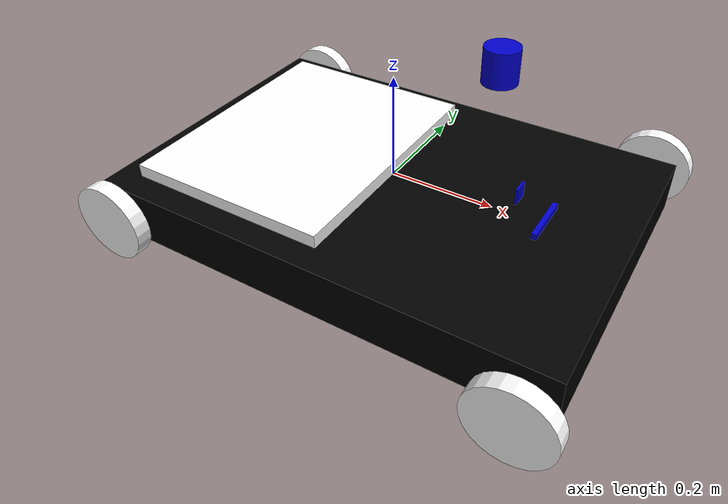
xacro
<?xml version="1.0" encoding="utf-8"?>

<robot name="racebot" xmlns:xacro="http://www.ros.org/wiki/xacro">

    <xacro:include filename="$(find racebot_description)/urdf/ackermann/macros.xacro" />
    <material name="blue">
        <color rgba="0 0 0.8 1" />
    </material>
    <material name="black">
        <color rgba="0 0 0 1" />
    </material>
    <material name="white">
        <color rgba="1 1 1 1" />
    </material>
    <material name="red">
        <color rgba="0.8 0.0 0.0 1.0" />
    </material>
    <material name="grey">
        <color rgba="0 0 0 0.5" />
    </material>

    <link name="base_footprint">
    </link>

    <link name="base_link">
        <visual>
            <geometry>
                <box size="0.9 0.6 0.1" />
            </geometry>
            <origin xyz="0 0 0" rpy="0 0 0" />
            <material name="black" />
        </visual>
        <collision>
            <geometry>
                <box size="0.9 0.6 0.1" />
            </geometry>
            <origin xyz="0.0 0.0 0.0" rpy="0.0 0.0 0.0" />
        </collision>

    </link>

    <joint name="base_link2base_footprint" type="fixed">
        <parent link="base_footprint" />
        <child link="base_link" />
        <origin xyz="0 0 -0.05" rpy="0 0 0" />
    </joint>

    <link name="base_inertia">
        <inertial>
            <origin xyz="0 0 0" />
            <mass value="4" />
            <inertia ixx="0.0264" ixy="0" ixz="0" iyy="0.0294" iyz="0" izz="0.00364" />
        </inertial>
    </link>

    <joint name="chassis_inertia_joint" type="fixed">
        <origin xyz="0 0 0" rpy="0 0 0" />
        <parent link="base_link" />
        <child link="base_inertia" />
    </joint>

    <link name="left_steering_hinge">
        <visual>
            <geometry>
                <cylinder radius="0.01" length="0.005" />
            </geometry>
            <origin xyz="0 0 0" rpy="1.57 0 0" />
            <material name="black">
                <color rgba="0.0 0.0 0.0 1.0" />
            </material>
        </visual>
        <collision>
            <geometry>
                <cylinder radius="0.01" length="0.005" />
            </geometry>
            <origin xyz="0.0 0.0 0.0" rpy="1.57 0.0 0.0" />
        </collision>
        <inertial>
            <origin xyz="0 0 0" />
            <mass value="0.5" />
            <inertia ixx="1.35E-05" ixy="0" ixz="0" iyy="1.35E-05" iyz="0" izz="2.5E-05" />
        </inertial>
    </link>

    <joint name="left_steering_hinge_joint" type="revolute">
        <parent link="base_link" />
        <child link="left_steering_hinge" />
        <origin xyz="0.40 0.33 0" />
        <axis xyz="0 0 1" />
        <limit lower="-0.8" upper="0.8" effort="5.0" velocity="1000.0" />
    </joint>
    <xacro:steering_hinge_transmission name="left_steering_hinge" />

    <link name="left_front_wheel">
        <visual>
            <geometry>
                <cylinder radius="0.075" length="0.03" />
            </geometry>
            <origin xyz="0 0 0" rpy="1.57 0 0" />
            <material name="white" />
        </visual>
        <collision>
            <geometry>
                <cylinder radius="0.075" length="0.03" />
            </geometry>
            <origin xyz="0.0 0.0 0.0" rpy="1.57 0.0 0.0" />
        </collision>
        <inertial>
            <origin xyz="0 0 0" />
            <mass value="2.0" />
            <inertia ixx="6.64E-04" ixy="0" ixz="0" iyy="6.64E-04" iyz="0" izz="1.02E-03" />
        </inertial>
    </link>

    <joint name="left_front_wheel_joint" type="continuous">
        <parent link="left_steering_hinge" />
        <child link="left_front_wheel" />
        <origin xyz="0 0.025 0" />
        <axis xyz="0 1 0" />
        <limit effort="10" velocity="1000" />
    </joint>
    <xacro:wheel_transmission name="left_front_wheel" />

    <link name="right_steering_hinge">
        <visual>
            <geometry>
                <cylinder radius="0.01" length="0.005" />
            </geometry>
            <origin xyz="0 0 0" rpy="1.57 0 0" />
            <material name="black" />
        </visual>
        <collision>
            <geometry>
                <cylinder radius="0.01" length="0.005" />
            </geometry>
            <origin xyz="0.0 0.0 0.0" rpy="1.57 0.0 0.0" />
        </collision>
        <inertial>
            <origin xyz="0 0 0" />
            <mass value="0.5" />
            <inertia ixx="1.35E-05" ixy="0" ixz="0" iyy="1.35E-05" iyz="0" izz="2.5E-05" />
        </inertial>
    </link>

    <joint name="right_steering_hinge_joint" type="revolute">
        <parent link="base_link" />
        <child link="right_steering_hinge" />
        <origin xyz="0.40 -0.33 0" />
        <axis xyz="0 0 1" />
        <limit lower="-0.8" upper="0.8" effort="5.0" velocity="1000.0" />
    </joint>
    <xacro:steering_hinge_transmission name="right_steering_hinge" />

    <link name="right_front_wheel">
        <visual>
            <geometry>
                <cylinder radius="0.075" length="0.03" />
            </geometry>
            <origin xyz="0 0 0" rpy="1.57 0 0" />
            <material name="white" />
        </visual>
        <collision>
            <geometry>
                <cylinder radius="0.075" length="0.03" />
            </geometry>
            <origin xyz="0.0 0.0 0.0" rpy="1.57 0.0 0.0" />
        </collision>
        <inertial>
            <origin xyz="0 0 0" />
            <mass value="2.0" />
            <inertia ixx="6.64E-04" ixy="0" ixz="0" iyy="6.64E-04" iyz="0" izz="1.02E-03" />
        </inertial>
    </link>

    <joint name="right_front_wheel_joint" type="continuous">
        <parent link="right_steering_hinge" />
        <child link="right_front_wheel" />
        <origin xyz="0 -0.025 0" />
        <axis xyz="0 1 0" />
        <limit effort="10" velocity="1000" />
    </joint>
    <xacro:wheel_transmission name="right_front_wheel" />

    <link name="left_rear_wheel">
        <visual>
            <geometry>
                <cylinder radius="0.075" length="0.03" />
            </geometry>
            <origin xyz="0 0 0" rpy="1.57 0 0" />
            <material name="white" />
        </visual>
        <collision>
            <geometry>
                <cylinder radius="0.075" length="0.03" />
            </geometry>
            <origin xyz="0.0 0.0 0.0" rpy="1.57 0.0 0.0" />
        </collision>
        <inertial>
            <origin xyz="0 0 0" />
            <mass value="2.0" />
            <inertia ixx="6.64E-04" ixy="0" ixz="0" iyy="6.64E-04" iyz="0" izz="1.02E-03" />
        </inertial>
    </link>

    <joint name="left_rear_wheel_joint" type="continuous">
        <parent link="base_link" />
        <child link="left_rear_wheel" />
        <origin xyz="-0.40 0.33 0" />
        <axis xyz="0 1 0" />
        <limit effort="10" velocity="1000" />
    </joint>
    <xacro:wheel_transmission name="left_rear_wheel" />

    <link name="right_rear_wheel">
        <visual>
            <geometry>
                <cylinder radius="0.075" length="0.03" />
            </geometry>
            <origin xyz="0 0 0" rpy="1.57 0 0" />
            <material name="white" />
        </visual>
        <collision>
            <geometry>
                <cylinder radius="0.075" length="0.03" />
            </geometry>
            <origin xyz="0.0 0.0 0.0" rpy="1.57 0.0 0.0" />
        </collision>
        <inertial>
            <origin xyz="0 0 0" />
            <mass value="2.0" />
            <inertia ixx="6.64E-04" ixy="0" ixz="0" iyy="6.64E-04" iyz="0" izz="1.02E-03" />
        </inertial>
    </link>

    <joint name="right_rear_wheel_joint" type="continuous">
        <parent link="base_link" />
        <child link="right_rear_wheel" />
        <origin xyz="-0.40 -0.33 0" />
        <axis xyz="0 1 0" />
        <limit effort="10" velocity="1000" />
    </joint>
    <xacro:wheel_transmission name="right_rear_wheel" />

    <link name="camera">
        <visual>
            <geometry>
                <box size="0.005 0.03 0.03" />
            </geometry>
            <origin xyz="0 0 0" rpy="0 0 0" />
            <material name="blue" />
        </visual>
        <collision>
            <geometry>
                <box size="0.005 0.03 0.03" />
            </geometry>
            <origin xyz="0.0 0.0 0.0" rpy="0.0 0.0 0.0" />
        </collision>
        <inertial>
            <origin xyz="0 0 0" />
            <mass value="0.05" />
            <inertia ixx="6.64E-04" ixy="0" ixz="0" iyy="6.64E-04" iyz="0" izz="1.02E-03" />
        </inertial>
    </link>

    <joint name="camera_joint" type="fixed">
        <parent link="base_link" />
        <child link="camera" />
        <origin xyz="0.24851 0.0022137 0.0975" />
        <axis xyz="0 0 1" />
    </joint>

    <link name="real_sense">
        <visual>
            <geometry>
                <box size="0.01 0.1 0.02" />
            </geometry>
            <origin xyz="0 0 0" rpy="0 0 0" />
            <material name="blue" />
        </visual>
        <collision>
            <geometry>
                <box size="0.01 0.1 0.02" />
            </geometry>
            <origin xyz="0.0 0.0 0.0" rpy="0.0 0.0 0.0" />
        </collision>
        <inertial>
            <origin xyz="0 0 0" />
            <mass value="0.05" />
            <inertia ixx="6.64E-04" ixy="0" ixz="0" iyy="6.64E-04" iyz="0" izz="1.02E-03" />
        </inertial>
    </link>

    <joint name="realsense_joint" type="fixed">
        <parent link="base_link" />
        <child link="real_sense" />
        <origin xyz="0.29864 0.0038046 0.052021" />
        <axis xyz="0 0 1" />
    </joint>

    <link name="realsense_depth" />
    <joint name="realsense_depth_joint" type="fixed">
        <origin xyz="0 0 0" rpy="-1.5708 0 -1.5708" />
        <parent link="real_sense" />
        <child link="realsense_depth" />
    </joint>

    <link name="lidar">
        <visual>
            <geometry>
                <cylinder radius="0.03" length="0.06" />
            </geometry>
            <origin xyz="0 0 0" rpy="0 0 0" />
            <material name="blue" />
        </visual>
        <collision>
            <geometry>
                <cylinder radius="0.03" length="0.06" />
            </geometry>
            <origin xyz="0.0 0.0 0.0" rpy="0.0 0.0 0.0" />
        </collision>
        <inertial>
            <origin xyz="0 0 0" />
            <mass value="0.1" />
            <inertia ixx="6.64E-04" ixy="0" ixz="0" iyy="6.64E-04" iyz="0" izz="1.02E-03" />
        </inertial>
    </link>

    <joint name="lidar_joint" type="fixed">
        <parent link="base_link" />
        <child link="lidar" />
        <origin xyz="0.193603 0 0.32377" />
        <axis xyz="0 0 1" />
    </joint>

    <link name="imu">
        <visual>
            <geometry>
                <box size="0.01 0.01 0.005" />
            </geometry>
            <origin xyz="0 0 0" rpy="0 0 0" />
            <material name="blue" />
        </visual>
        <collision>
            <geometry>
                <box size="0.01 0.01 0.005" />
            </geometry>
            <origin xyz="0.0 0.0 0.0" rpy="0.0 0.0 0.0" />
        </collision>
        <inertial>
            <origin xyz="0 0 0" />
            <mass value="0.05" />
            <inertia ixx="6.64E-04" ixy="0" ixz="0" iyy="6.64E-04" iyz="0" izz="1.02E-03" />
        </inertial>
    </link>

    <joint name="imu_joint" type="fixed">
        <parent link="base_link" />
        <child link="imu" />
        <origin xyz="0 0 0.02" />
        <axis xyz="0 0 1" />
    </joint>

    <xacro:include filename="$(find racebot_description)/urdf/ackermann/ackermanncar.gazebo" />
    <link name="grey_box">
        <inertial>
            <origin xyz="0 0 0" />
            <mass value="0.5" />
            <inertia ixx="6.64E-04" ixy="0" ixz="0" iyy="6.64E-04" iyz="0" izz="1.02E-03" />
        </inertial>

        <collision>
            <origin rpy="0 0 0" xyz="0 0 0" />
            <geometry>
                <box size="0.4 0.5 0.05" />
            </geometry>
        </collision>

        <visual>
            <origin rpy="0 0 0" xyz="0 0 0" />
            <geometry>
                <box size="0.4 0.5 0.05" />
            </geometry>
            <material name="white" />
        </visual>
    </link>

    <joint name="base_box" type="fixed">
        <origin xyz="-0.2 0 0.05" rpy="0 0 0" />
        <parent link="base_link" />
        <child link="grey_box" />
    </joint>
</robot>
